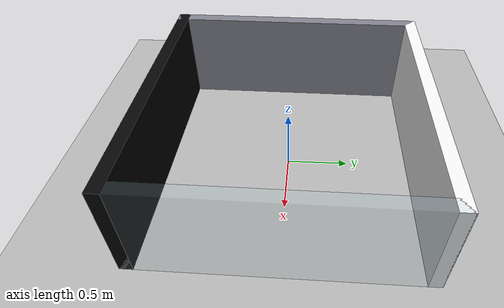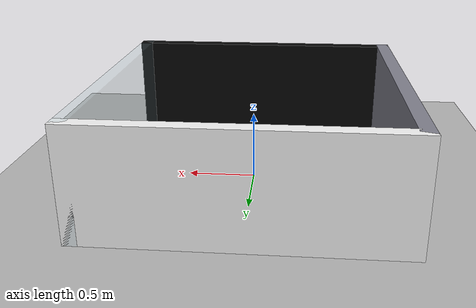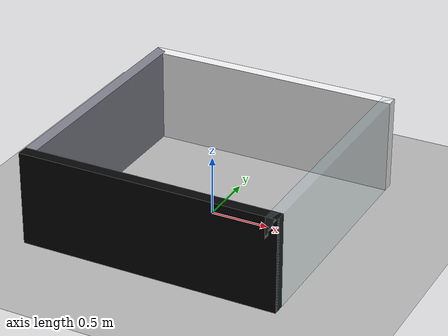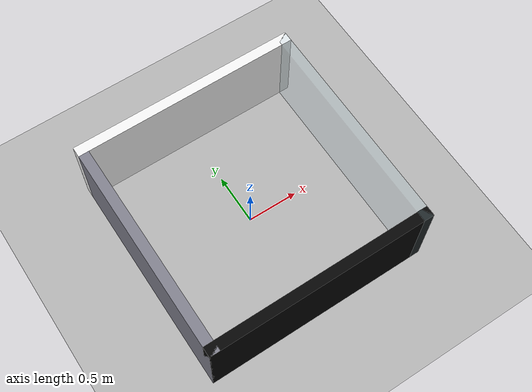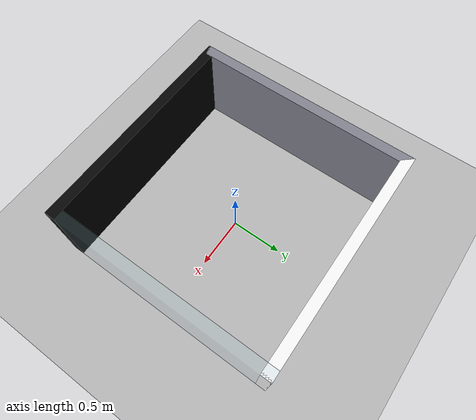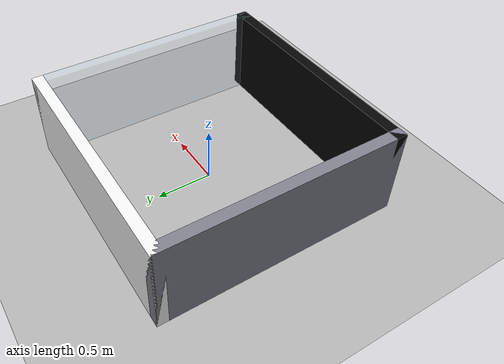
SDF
<?xml version="1.0"?>
<sdf version="1.9">
  <world name="materials_test">
    <physics name="1ms" type="ignored">
      <max_step_size>0.001</max_step_size>
      <real_time_factor>1.0</real_time_factor>
    </physics>

    <plugin filename="gz-sim-physics-system" name="gz::sim::systems::Physics"/>
    <plugin filename="gz-sim-user-commands-system" name="gz::sim::systems::UserCommands"/>
    <plugin filename="gz-sim-scene-broadcaster-system" name="gz::sim::systems::SceneBroadcaster"/>
    <plugin filename="gz-sim-sensors-system" name="gz::sim::systems::Sensors">
      <render_engine>ogre2</render_engine>
    </plugin>
    <plugin filename="gz-sim-imu-system" name="gz::sim::systems::Imu"/>

    <gravity>0 0 -9.8</gravity>
    <scene>
      <ambient>0.6 0.6 0.6 1</ambient>
      <background>0.8 0.85 0.9 1</background>
      <grid>false</grid>
    </scene>

    <light type="directional" name="sun">
      <cast_shadows>true</cast_shadows>
      <pose>0 0 10 0 0 0</pose>
      <diffuse>0.9 0.9 0.9 1</diffuse>
      <specular>0.2 0.2 0.2 1</specular>
      <direction>-0.5 0.1 -0.9</direction>
    </light>

    <model name="ground_plane">
      <static>true</static>
      <link name="link">
        <collision name="collision">
          <geometry><plane><normal>0 0 1</normal><size>100 100</size></plane></geometry>
          <surface><friction><ode><mu>1.0</mu><mu2>1.0</mu2></ode></friction></surface>
        </collision>
        <visual name="visual">
          <geometry><plane><normal>0 0 1</normal><size>100 100</size></plane></geometry>
          <material><ambient>0.7 0.7 0.7 1</ambient><diffuse>0.7 0.7 0.7 1</diffuse></material>
        </visual>
      </link>
    </model>

    <model name="walls">
      <static>true</static>
      <link name="link">

        <!-- north: matt white -->
        <collision name="north_collision">
          <pose>0 1.05 0.4 0 0 0</pose>
          <geometry><box><size>2.2 0.1 0.8</size></box></geometry>
        </collision>
        <visual name="north_visual">
          <pose>0 1.05 0.4 0 0 0</pose>
          <geometry><box><size>2.2 0.1 0.8</size></box></geometry>
          <material>
            <ambient>0.95 0.95 0.95 1</ambient>
            <diffuse>0.95 0.95 0.95 1</diffuse>
            <specular>0.05 0.05 0.05 1</specular>
          </material>
        </visual>

        <!-- south: matt black -->
        <collision name="south_collision">
          <pose>0 -1.05 0.4 0 0 0</pose>
          <geometry><box><size>2.2 0.1 0.8</size></box></geometry>
        </collision>
        <visual name="south_visual">
          <pose>0 -1.05 0.4 0 0 0</pose>
          <geometry><box><size>2.2 0.1 0.8</size></box></geometry>
          <material>
            <ambient>0.02 0.02 0.02 1</ambient>
            <diffuse>0.02 0.02 0.02 1</diffuse>
            <specular>0.0 0.0 0.0 1</specular>
          </material>
        </visual>

        <!-- east: glass-like (a real LiDAR mostly shoots straight through this) -->
        <collision name="east_collision">
          <pose>1.05 0 0.4 0 0 0</pose>
          <geometry><box><size>0.1 2.2 0.8</size></box></geometry>
        </collision>
        <visual name="east_visual">
          <pose>1.05 0 0.4 0 0 0</pose>
          <geometry><box><size>0.1 2.2 0.8</size></box></geometry>
          <material>
            <ambient>0.6 0.75 0.8 0.15</ambient>
            <diffuse>0.6 0.75 0.8 0.15</diffuse>
            <specular>0.9 0.9 0.9 1</specular>
          </material>
        </visual>

        <!-- west: polished metal (a real LiDAR at a shallow angle sees the reflection, not the wall) -->
        <collision name="west_collision">
          <pose>-1.05 0 0.4 0 0 0</pose>
          <geometry><box><size>0.1 2.2 0.8</size></box></geometry>
        </collision>
        <visual name="west_visual">
          <pose>-1.05 0 0.4 0 0 0</pose>
          <geometry><box><size>0.1 2.2 0.8</size></box></geometry>
          <material>
            <ambient>0.5 0.5 0.55 1</ambient>
            <diffuse>0.5 0.5 0.55 1</diffuse>
            <specular>1.0 1.0 1.0 1</specular>
            <pbr><metal><metalness>1.0</metalness><roughness>0.05</roughness></metal></pbr>
          </material>
        </visual>

      </link>
    </model>
  </world>
</sdf>
